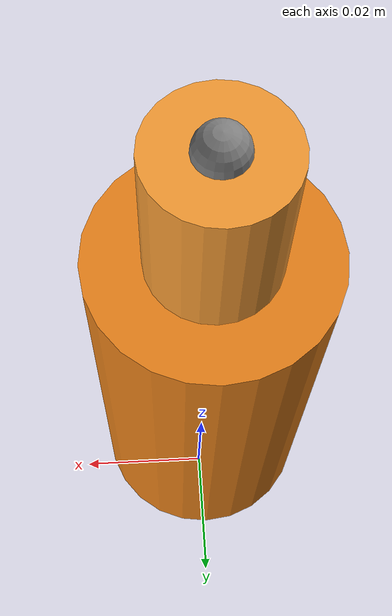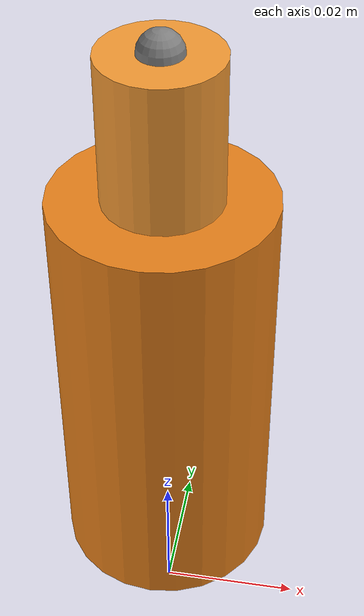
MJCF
<!--
  凸轴物体 MJCF — Peg-in-Slot 任务的 peg
  主体圆柱直径 0.03m, 高 0.05m
  尖端小圆柱直径 0.016m, 高 0.02m (用于插入)
  橙色
-->
<mujoco model="peg">
  <compiler angle="radian"/>
  <worldbody>
    <body name="peg" pos="0 0 0.03">
      <freejoint name="peg_joint"/>
      <!-- 主体 -->
      <geom name="peg_body" type="cylinder" size="0.015 0.03" pos="0 0 0.015" rgba="0.9 0.5 0.1 1" friction="0.6 0.4 0.2"/>
      <inertial mass="0.06" diaginertia="1e-5 1e-5 1e-5" pos="0 0 0.03"/>
      <!-- 尖端 (插入轴) -->
      <geom name="peg_tip" type="cylinder" size="0.008 0.01" pos="0 0 0.055" rgba="0.95 0.6 0.2 1" friction="0.4 0.3 0.1"/>
      <!-- tip site 用于检测插入深度 -->
      <site name="peg_tip_site" pos="0 0 0.065" size="0.003"/>
      <site name="peg_grasp_site" pos="0 0 0.04" size="0.005"/>
    </body>
  </worldbody>
</mujoco>
